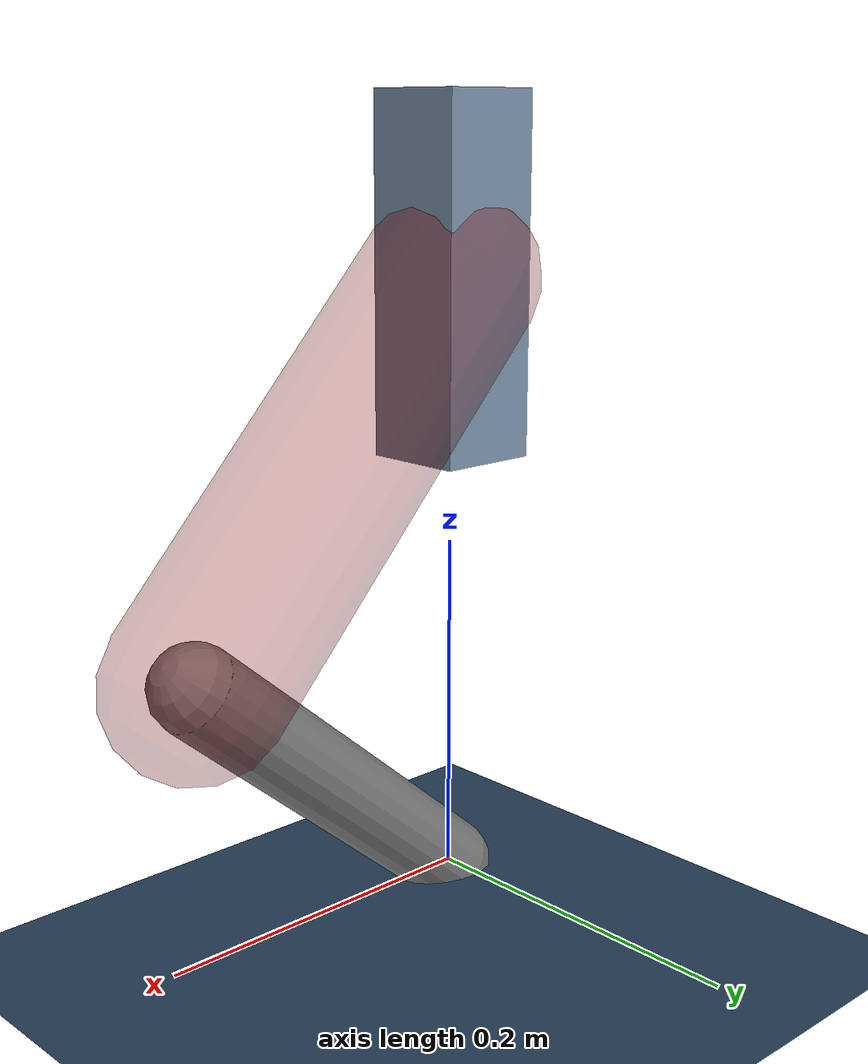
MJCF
<mujoco model="Hopper2D">
	<compiler inertiafromgeom="true" angle="radian" />
	<option timestep="0.001" integrator="implicit" cone="elliptic" solver="Newton" tolerance="1e-10" />

	<default>
		<geom contype="1" conaffinity="1" condim="3" friction="2 0.005 0.0001" solref="0.005 1" />
		<joint limited="true" damping="0.1" />
	</default>

	<asset>
		<texture name="skybox" type="skybox" builtin="gradient" rgb1=".4 .6 .8" rgb2="0 0 0" width="800" height="800" />
		<texture name="grid" type="2d" builtin="checker" rgb1=".1 .2 .3" rgb2=".2 .3 .4" width="300" height="300" mark="edge" markrgb=".2 .3 .4" />
		<material name="ground" texture="grid" texrepeat="1 1" texuniform="true" reflectance="0.1" />
		<material name="leg" rgba="0.5 0.6 0.7 1" />
	</asset>

	<worldbody>

		<geom name="floor" type="plane" size="5 5 0.25" material="ground" />

		<light directional="false" diffuse="0.8 0.8 0.8" specular="0.3 0.3 0.3" pos="0 0 2" dir="0 0 -1" />
		<light mode="targetbodycom" target="base" directional="false" diffuse="0.8 0.8 0.8" specular="0.3 0.3 0.3" pos="0 0 2" dir="0 0 -1" />

		<camera name="fixed" pos="0 -2 1" xyaxes="1 0 0 0 0 1" />
		<camera name="tracking" mode="trackcom" pos="0 -3 1" />

		<body name="root" pos="0 0 0.34981415088694534">
			<joint name="slide_x" type="slide" axis="1 0 0" range="-100 100" />
			<joint name="slide_z" type="slide" axis="0 0 1" range="0 10" />

			<body name="base" pos="0 0 0">
				<geom name="torso" type="box" size="0.03 0.03 0.1" mass="2.83" material="leg" />

				<body name="link1" pos="0 0 0" euler="0 0.8256298453457307 0">
					<joint type="hinge" axis="0 -1 0" pos="0 0 0" name="hinge1" limited="true" range="-3.14 3.14" stiffness="0" damping="0.1" />
					<geom name="thigh" type="capsule" fromto="0 0 0 0.2658610663892394 0 0" size="0.05" rgba="0.5 0 0 0.3" mass="0.8977387726120224" />

					<body name="link2" pos="0.2658610663892394 0 0" euler="0 1.6076941883278946 0">
						<joint type="hinge" axis="0 -1 0" pos="0 0 0" name="hinge2" limited="true" range="-3.14 3.14" stiffness="0" damping="0.1" />
						<geom name="shank" type="capsule" fromto="0 0 0 0.2373685042468348 0 0" size="0.025" mass="0.43209480339746786" />

					</body>
				</body>
			</body>
		</body>
	</worldbody>

	<actuator>
		<motor name="torque1" joint="hinge1" ctrlrange="-82.2728153431012 82.2728153431012" ctrllimited="true" gear="1" />
		<motor name="torque2" joint="hinge2" ctrlrange="-70.76937585224016 70.76937585224016" ctrllimited="true" gear="1" />
	</actuator>
</mujoco>
